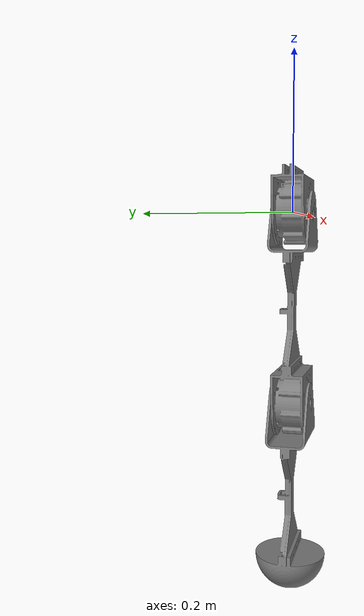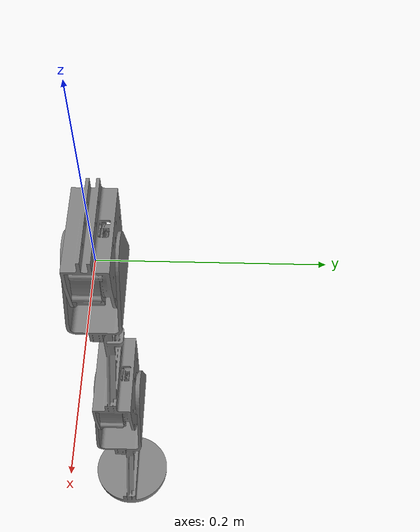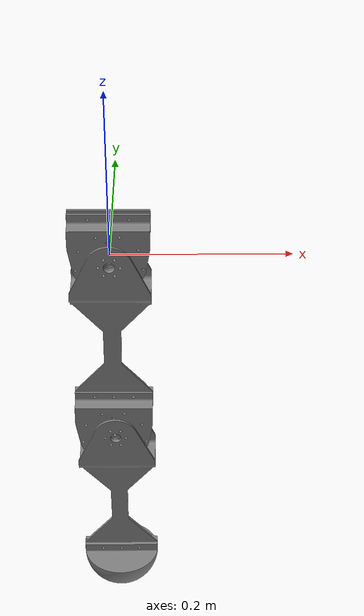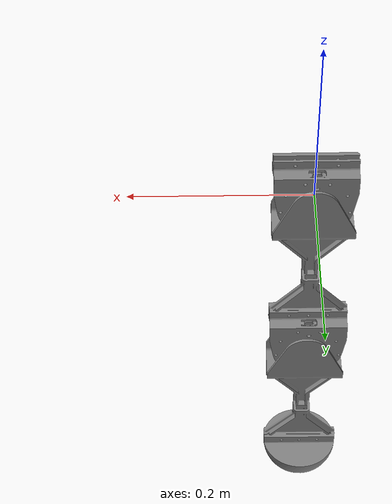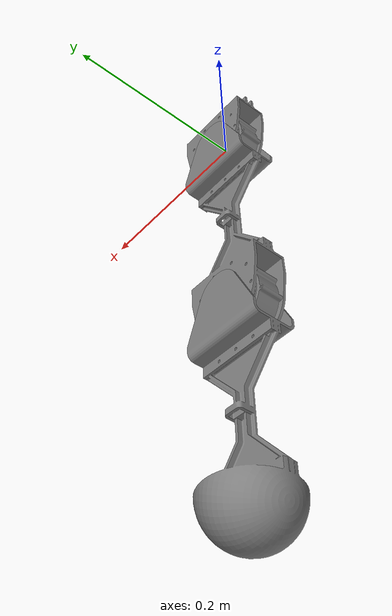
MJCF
<mujoco model="biped">
    <compiler angle="degree"/>  <!-- use radians to define angles -->
    <option>
        <flag contact="enable"/>
    </option>
    <default>
        <!-- convert the Fusion 360 coordinate system to MuJoCo -->
        <mesh scale="1 1 1"/>
        <geom type="mesh" />
        <joint type="hinge" limited="true" axis="0 1 0"/>
        <!-- kp is proportional gain, kv is damping gain -->
        <position ctrllimited="true" kp="1" kv="0.1"/>
    </default>
    <asset>
        <!-- Fusion outputs meshes with mm units by default, but must be converted to m in MuJoCo, hence the scaling -->
        <mesh name="Hip" file="hip_updated.stl"/>
        <mesh name="Thigh" file="thigh_updated.stl"/>
        <mesh name="Shank" file="shank_updated.stl"/>
    </asset>
    <worldbody>
        <body name="Hip">
            <geom mesh="Hip"/>
            <joint name="base_z" type="slide" axis="0 0 1" pos="0 0 0" limited="false"/>
            <body name="Thigh" pos="0 0 0" >
                <joint name="hip_joint" pos="0 0 0" axis="0 1 0" limited="true" range="-90 90"/>
                <geom mesh="Thigh"/>
                <body name="Shank" pos="0 0 -0.242">
                    <joint name="knee_joint" axis="0 1 0" limited="true" range="-90 90"/>
                    <geom mesh="Shank"/>
                </body>
            </body>
        </body>
    </worldbody>

    <actuator>
        <position name="hip_joint" joint="hip_joint" ctrlrange="-5 5"/>
        <position name="knee_joint" joint="knee_joint" ctrlrange="-5 5"/>
    </actuator>
    <contact>
        <exclude body1="Hip" body2="Thigh"/>
        <exclude body1="Thigh" body2="Shank"/>
    </contact>
</mujoco>
